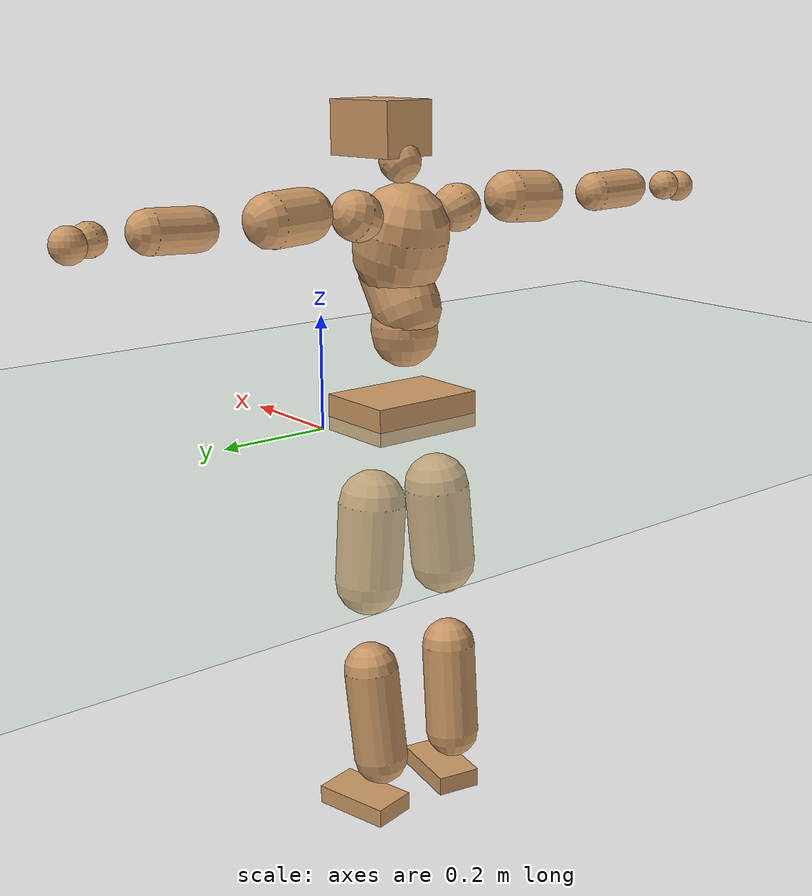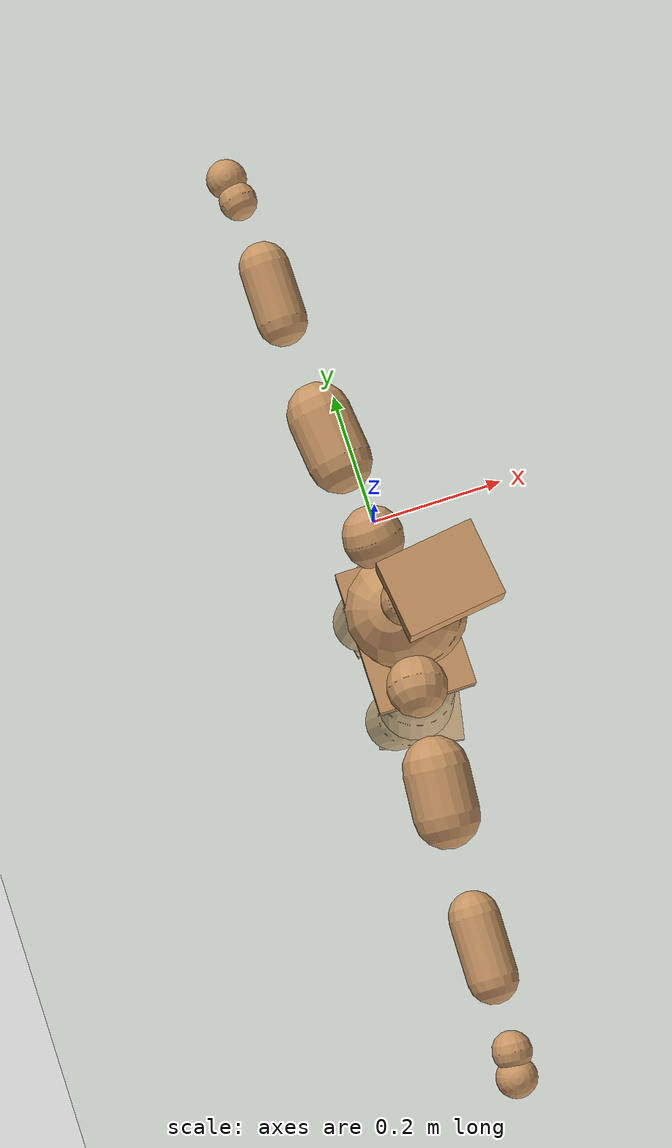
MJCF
<mujoco model="humanoid">
  <compiler coordinate="local" angle="radian"/>
  <default>
    <joint damping="0.0" armature="0.01" stiffness="0.0" limited="true"/>
    <geom conaffinity="1" condim="3" contype="7" margin="0.001" rgba="0.8 0.6 .4 1"/>
  </default>
  <asset>
    <texture type="skybox" builtin="gradient" rgb1=".4 .5 .6" rgb2="0 0 0" width="100" height="100"/>
    <texture builtin="flat" height="1278" mark="cross" markrgb="1 1 1" name="texgeom" random="0.01" rgb1="0.8 0.6 0.4" rgb2="0.8 0.6 0.4" type="cube" width="127"/>
    <texture builtin="checker" height="100" name="texplane" rgb1="0 0 0" rgb2="0.8 0.8 0.8" type="2d" width="100"/>
    <material name="MatPlane" reflectance="0.5" shininess="1" specular="1" texrepeat="60 60" texture="texplane"/>
    <material name="geom" texture="texgeom" texuniform="true"/>
  </asset>
  <worldbody>
    <light cutoff="100" diffuse="1 1 1" dir="-0 0 -1.3" directional="true" exponent="1" pos="0 0 1.3" specular=".1 .1 .1"/>
    <geom conaffinity="1" condim="3" name="floor" pos="0 0 0" rgba="0.8 0.9 0.8 1" size="100 100 .2" type="plane" material="MatPlane"/>
    <body name="Pelvis" pos="-0.0004 -0.1711 0.0178">
      <freejoint name="Pelvis"/>
      <geom type="box" contype="1" conaffinity="1" density="5359.375403" pos="-0.0058 -0.0000 -0.0116" size="0.0754 0.1093 0.0332" quat="1.0000 0.0000 0.0000 0.0002" name="Pelvis"/>
      <body name="L_Hip" pos="-0.0118 0.0695 -0.0799">
        <joint name="L_Hip_x" type="hinge" pos="0 0 0" axis="1 0 0" stiffness="1600" damping="160" armature="0.02" range="-180.0000 180.0000"/>
        <joint name="L_Hip_y" type="hinge" pos="0 0 0" axis="0 1 0" stiffness="1600" damping="160" armature="0.02" range="-180.0000 180.0000"/>
        <joint name="L_Hip_z" type="hinge" pos="0 0 0" axis="0 0 1" stiffness="1600" damping="160" armature="0.02" range="-180.0000 180.0000"/>
        <geom type="capsule" contype="1" conaffinity="1" density="2040.816327" size="0.0612" fromto="-0.0011 0.0072 -0.0909 -0.0030 0.0190 -0.2395" name="L_Hip"/>
        <body name="L_Knee" pos="-0.0041 0.0262 -0.3304">
          <joint name="L_Knee_x" type="hinge" pos="0 0 0" axis="1 0 0" stiffness="1600" damping="160" armature="0.02" range="-180.0000 180.0000"/>
          <joint name="L_Knee_y" type="hinge" pos="0 0 0" axis="0 1 0" stiffness="1600" damping="160" armature="0.02" range="-180.0000 180.0000"/>
          <joint name="L_Knee_z" type="hinge" pos="0 0 0" axis="0 0 1" stiffness="1600" damping="160" armature="0.02" range="-180.0000 180.0000"/>
          <geom type="capsule" contype="1" conaffinity="1" density="1234.567901" size="0.0509" fromto="-0.0098 -0.0022 -0.0803 -0.0310 -0.0071 -0.2549" name="L_Knee"/>
          <body name="L_Ankle" pos="-0.0408 -0.0093 -0.3352">
            <joint name="L_Ankle_x" type="hinge" pos="0 0 0" axis="1 0 0" stiffness="1600" damping="160" armature="0.02" range="-180.0000 180.0000"/>
            <joint name="L_Ankle_y" type="hinge" pos="0 0 0" axis="0 1 0" stiffness="1600" damping="160" armature="0.02" range="-180.0000 180.0000"/>
            <joint name="L_Ankle_z" type="hinge" pos="0 0 0" axis="0 0 1" stiffness="1600" damping="160" armature="0.02" range="-180.0000 180.0000"/>
            <geom type="box" contype="1" conaffinity="1" density="1000.000015" pos="0.0510 0.0112 -0.0235" size="0.0749 0.0426 0.0177" quat="0.9942 0.0000 0.0000 0.1075" name="L_Ankle"/>
            <body name="L_Toe" pos="0.1021 0.0223 -0.047">
              <joint name="L_Toe_x" type="hinge" pos="0 0 0" axis="1 0 0" stiffness="1000" damping="100" armature="0.02" range="-180.0000 180.0000"/>
              <joint name="L_Toe_y" type="hinge" pos="0 0 0" axis="0 1 0" stiffness="1000" damping="100" armature="0.02" range="-180.0000 180.0000"/>
              <joint name="L_Toe_z" type="hinge" pos="0 0 0" axis="0 0 1" stiffness="1000" damping="100" armature="0.02" range="-180.0000 180.0000"/>
              <geom type="box" contype="1" conaffinity="1" density="8097331.690763" pos="0.0000 0.0000 0.0231" size="0.0009 0.0021 0.0009" quat="0.9934 0.0000 0.0000 0.1146" name="L_Toe"/>
            </body>
          </body>
        </body>
      </body>
      <body name="R_Hip" pos="-0.0092 -0.0688 -0.0785">
        <joint name="R_Hip_x" type="hinge" pos="0 0 0" axis="1 0 0" stiffness="1600" damping="160" armature="0.02" range="-180.0000 180.0000"/>
        <joint name="R_Hip_y" type="hinge" pos="0 0 0" axis="0 1 0" stiffness="1600" damping="160" armature="0.02" range="-180.0000 180.0000"/>
        <joint name="R_Hip_z" type="hinge" pos="0 0 0" axis="0 0 1" stiffness="1600" damping="160" armature="0.02" range="-180.0000 180.0000"/>
        <geom type="capsule" contype="1" conaffinity="1" density="2040.816327" size="0.0607" fromto="-0.0018 -0.0080 -0.0904 -0.0050 -0.0218 -0.2454" name="R_Hip"/>
        <body name="R_Knee" pos="-0.0068 -0.0299 -0.3358">
          <joint name="R_Knee_x" type="hinge" pos="0 0 0" axis="1 0 0" stiffness="1600" damping="160" armature="0.02" range="-180.0000 180.0000"/>
          <joint name="R_Knee_y" type="hinge" pos="0 0 0" axis="0 1 0" stiffness="1600" damping="160" armature="0.02" range="-180.0000 180.0000"/>
          <joint name="R_Knee_z" type="hinge" pos="0 0 0" axis="0 0 1" stiffness="1600" damping="160" armature="0.02" range="-180.0000 180.0000"/>
          <geom type="capsule" contype="1" conaffinity="1" density="1234.567901" size="0.0511" fromto="-0.0094 0.0029 -0.0805 -0.0300 0.0091 -0.2556" name="R_Knee"/>
          <body name="R_Ankle" pos="-0.0394 0.0119 -0.3361">
            <joint name="R_Ankle_x" type="hinge" pos="0 0 0" axis="1 0 0" stiffness="1600" damping="160" armature="0.02" range="-180.0000 180.0000"/>
            <joint name="R_Ankle_y" type="hinge" pos="0 0 0" axis="0 1 0" stiffness="1600" damping="160" armature="0.02" range="-180.0000 180.0000"/>
            <joint name="R_Ankle_z" type="hinge" pos="0 0 0" axis="0 0 1" stiffness="1600" damping="160" armature="0.02" range="-180.0000 180.0000"/>
            <geom type="box" contype="1" conaffinity="1" density="999.999973" pos="0.0526 -0.0104 -0.0206" size="0.0747 0.042 0.0181" quat="0.9952 0.0000 0.0000 -0.0978" name="R_Ankle"/>
            <body name="R_Toe" pos="0.1051 -0.0209 -0.0411">
              <joint name="R_Toe_x" type="hinge" pos="0 0 0" axis="1 0 0" stiffness="1000" damping="100" armature="0.02" range="-180.0000 180.0000"/>
              <joint name="R_Toe_y" type="hinge" pos="0 0 0" axis="0 1 0" stiffness="1000" damping="100" armature="0.02" range="-180.0000 180.0000"/>
              <joint name="R_Toe_z" type="hinge" pos="0 0 0" axis="0 0 1" stiffness="1000" damping="100" armature="0.02" range="-180.0000 180.0000"/>
              <geom type="box" contype="1" conaffinity="1" density="8086687.204742" pos="0.0000 0.0000 0.0210" size="0.0008 0.0021 0.0009" quat="0.9962 0.0000 0.0000 -0.0871" name="R_Toe"/>
            </body>
          </body>
        </body>
      </body>
      <body name="Torso" pos="-0.0135 -0.0008 0.0887">
        <joint name="Torso_x" type="hinge" pos="0 0 0" axis="1 0 0" stiffness="2000" damping="200" armature="0.02" range="-180.0000 180.0000"/>
        <joint name="Torso_y" type="hinge" pos="0 0 0" axis="0 1 0" stiffness="2000" damping="200" armature="0.02" range="-180.0000 180.0000"/>
        <joint name="Torso_z" type="hinge" pos="0 0 0" axis="0 0 1" stiffness="2000" damping="200" armature="0.02" range="-180.0000 180.0000"/>
        <geom type="capsule" contype="1" conaffinity="1" density="2040.816327" size="0.0598" fromto="0.0008 0.0009 0.0598 0.0006 0.0006 0.0426" name="Torso"/>
        <body name="Spine" pos="0.0014 0.0015 0.1023">
          <joint name="Spine_x" type="hinge" pos="0 0 0" axis="1 0 0" stiffness="2000" damping="200" armature="0.02" range="-180.0000 180.0000"/>
          <joint name="Spine_y" type="hinge" pos="0 0 0" axis="0 1 0" stiffness="2000" damping="200" armature="0.02" range="-180.0000 180.0000"/>
          <joint name="Spine_z" type="hinge" pos="0 0 0" axis="0 0 1" stiffness="2000" damping="200" armature="0.02" range="-180.0000 180.0000"/>
          <geom type="capsule" contype="1" conaffinity="1" density="2040.816327" size="0.0618" fromto="0.0301 0.0026 0.0539 -0.0074 -0.0007 -0.0133" name="Spine"/>
          <body name="Chest" pos="0.0227 0.002 0.0406">
            <joint name="Chest_x" type="hinge" pos="0 0 0" axis="1 0 0" stiffness="2000" damping="200" armature="0.02" range="-180.0000 180.0000"/>
            <joint name="Chest_y" type="hinge" pos="0 0 0" axis="0 1 0" stiffness="2000" damping="200" armature="0.02" range="-180.0000 180.0000"/>
            <joint name="Chest_z" type="hinge" pos="0 0 0" axis="0 0 1" stiffness="2000" damping="200" armature="0.02" range="-180.0000 180.0000"/>
            <geom type="capsule" contype="1" conaffinity="1" density="2040.816327" size="0.0833" fromto="-0.0222 -0.0008 0.0802 -0.0120 -0.0004 0.0434" name="Chest"/>
            <body name="Neck" pos="-0.0399 -0.0014 0.1723">
              <joint name="Neck_x" type="hinge" pos="0 0 0" axis="1 0 0" stiffness="1000" damping="100" armature="0.02" range="-180.0000 180.0000"/>
              <joint name="Neck_y" type="hinge" pos="0 0 0" axis="0 1 0" stiffness="1000" damping="100" armature="0.02" range="-180.0000 180.0000"/>
              <joint name="Neck_z" type="hinge" pos="0 0 0" axis="0 0 1" stiffness="1000" damping="100" armature="0.02" range="-180.0000 180.0000"/>
              <geom type="capsule" contype="1" conaffinity="1" density="1000" size="0.0364" fromto="0.0235 0.0021 0.0277 0.0215 0.0019 0.0254" name="Neck"/>
              <body name="Head" pos="0.0451 0.004 0.0532">
                <joint name="Head_x" type="hinge" pos="0 0 0" axis="1 0 0" stiffness="1000" damping="100" armature="0.02" range="-180.0000 180.0000"/>
                <joint name="Head_y" type="hinge" pos="0 0 0" axis="0 1 0" stiffness="1000" damping="100" armature="0.02" range="-180.0000 180.0000"/>
                <joint name="Head_z" type="hinge" pos="0 0 0" axis="0 0 1" stiffness="1000" damping="100" armature="0.02" range="-180.0000 180.0000"/>
                <geom type="box" contype="1" conaffinity="1" density="2249.999693" pos="0.0235 0.0030 0.0276" size="0.0693 0.0544 0.0474" quat="0.9980 0.0000 0.0000 0.0633" name="Head"/>
              </body>
            </body>
            <body name="L_Thorax" pos="-0.0289 0.0669 0.0999">
              <joint name="L_Thorax_x" type="hinge" pos="0 0 0" axis="1 0 0" stiffness="1000" damping="100" armature="0.02" range="-180.0000 180.0000"/>
              <joint name="L_Thorax_y" type="hinge" pos="0 0 0" axis="0 1 0" stiffness="1000" damping="100" armature="0.02" range="-180.0000 180.0000"/>
              <joint name="L_Thorax_z" type="hinge" pos="0 0 0" axis="0 0 1" stiffness="1000" damping="100" armature="0.02" range="-180.0000 180.0000"/>
              <geom type="capsule" contype="1" conaffinity="1" density="1000" size="0.0434" fromto="-0.0038 0.0404 0.0154 -0.0035 0.0367 0.0140" name="L_Thorax"/>
              <body name="L_Shoulder" pos="-0.0073 0.0771 0.0293">
                <joint name="L_Shoulder_x" type="hinge" pos="0 0 0" axis="1 0 0" stiffness="1000" damping="100" armature="0.02" range="-720.0000 720.0000"/>
                <joint name="L_Shoulder_y" type="hinge" pos="0 0 0" axis="0 1 0" stiffness="1000" damping="100" armature="0.02" range="-720.0000 720.0000"/>
                <joint name="L_Shoulder_z" type="hinge" pos="0 0 0" axis="0 0 1" stiffness="1000" damping="100" armature="0.02" range="-720.0000 720.0000"/>
                <geom type="capsule" contype="1" conaffinity="1" density="1000" size="0.0455" fromto="-0.0079 0.0750 -0.0030 -0.0154 0.1469 -0.0058" name="L_Shoulder"/>
                <body name="L_Elbow" pos="-0.0233 0.2219 -0.0088">
                  <joint name="L_Elbow_x" type="hinge" pos="0 0 0" axis="1 0 0" stiffness="1000" damping="100" armature="0.02" range="-720.0000 720.0000"/>
                  <joint name="L_Elbow_y" type="hinge" pos="0 0 0" axis="0 1 0" stiffness="1000" damping="100" armature="0.02" range="-720.0000 720.0000"/>
                  <joint name="L_Elbow_z" type="hinge" pos="0 0 0" axis="0 0 1" stiffness="1000" damping="100" armature="0.02" range="-720.0000 720.0000"/>
                  <geom type="capsule" contype="1" conaffinity="1" density="1000" size="0.0356" fromto="-0.0004 0.0655 0.0025 -0.0009 0.1457 0.0055" name="L_Elbow"/>
                  <body name="L_Wrist" pos="-0.0013 0.2112 0.008">
                    <joint name="L_Wrist_x" type="hinge" pos="0 0 0" axis="1 0 0" stiffness="600" damping="60" armature="0.02" range="-180.0000 180.0000"/>
                    <joint name="L_Wrist_y" type="hinge" pos="0 0 0" axis="0 1 0" stiffness="600" damping="60" armature="0.02" range="-180.0000 180.0000"/>
                    <joint name="L_Wrist_z" type="hinge" pos="0 0 0" axis="0 0 1" stiffness="600" damping="60" armature="0.02" range="-180.0000 180.0000"/>
                    <geom type="capsule" contype="1" conaffinity="1" density="1000" size="0.0267" fromto="-0.0057 0.0341 -0.0042 -0.0060 0.0361 -0.0044" name="L_Wrist"/>
                    <body name="L_Hand" pos="-0.0117 0.0703 -0.0086">
                      <joint name="L_Hand_x" type="hinge" pos="0 0 0" axis="1 0 0" stiffness="600" damping="60" armature="0.02" range="-180.0000 180.0000"/>
                      <joint name="L_Hand_y" type="hinge" pos="0 0 0" axis="0 1 0" stiffness="600" damping="60" armature="0.02" range="-180.0000 180.0000"/>
                      <joint name="L_Hand_z" type="hinge" pos="0 0 0" axis="0 0 1" stiffness="600" damping="60" armature="0.02" range="-180.0000 180.0000"/>
                      <geom type="sphere" contype="1" conaffinity="1" density="1000" size="0.0284" pos="0.0000 0.0000 0.0000" name="L_Hand"/>
                    </body>
                  </body>
                </body>
              </body>
            </body>
            <body name="R_Thorax" pos="-0.0336 -0.0693 0.0986">
              <joint name="R_Thorax_x" type="hinge" pos="0 0 0" axis="1 0 0" stiffness="1000" damping="100" armature="0.02" range="-180.0000 180.0000"/>
              <joint name="R_Thorax_y" type="hinge" pos="0 0 0" axis="0 1 0" stiffness="1000" damping="100" armature="0.02" range="-180.0000 180.0000"/>
              <joint name="R_Thorax_z" type="hinge" pos="0 0 0" axis="0 0 1" stiffness="1000" damping="100" armature="0.02" range="-180.0000 180.0000"/>
              <geom type="capsule" contype="1" conaffinity="1" density="1000" size="0.0427" fromto="-0.0051 -0.0397 0.0152 -0.0053 -0.0416 0.0159" name="R_Thorax"/>
              <body name="R_Shoulder" pos="-0.0104 -0.0813 0.0311">
                <joint name="R_Shoulder_x" type="hinge" pos="0 0 0" axis="1 0 0" stiffness="1000" damping="100" armature="0.02" range="-720.0000 720.0000"/>
                <joint name="R_Shoulder_y" type="hinge" pos="0 0 0" axis="0 1 0" stiffness="1000" damping="100" armature="0.02" range="-720.0000 720.0000"/>
                <joint name="R_Shoulder_z" type="hinge" pos="0 0 0" axis="0 0 1" stiffness="1000" damping="100" armature="0.02" range="-720.0000 720.0000"/>
                <geom type="capsule" contype="1" conaffinity="1" density="1000" size="0.0467" fromto="-0.0062 -0.0764 -0.0035 -0.0115 -0.1416 -0.0066" name="R_Shoulder"/>
                <body name="R_Elbow" pos="-0.0176 -0.218 -0.0101">
                  <joint name="R_Elbow_x" type="hinge" pos="0 0 0" axis="1 0 0" stiffness="1000" damping="100" armature="0.02" range="-720.0000 720.0000"/>
                  <joint name="R_Elbow_y" type="hinge" pos="0 0 0" axis="0 1 0" stiffness="1000" damping="100" armature="0.02" range="-720.0000 720.0000"/>
                  <joint name="R_Elbow_z" type="hinge" pos="0 0 0" axis="0 0 1" stiffness="1000" damping="100" armature="0.02" range="-720.0000 720.0000"/>
                  <geom type="capsule" contype="1" conaffinity="1" density="1000" size="0.0357" fromto="-0.0013 -0.0657 0.0018 -0.0030 -0.1536 0.0042" name="R_Elbow"/>
                  <body name="R_Wrist" pos="-0.0042 -0.2193 0.006">
                    <joint name="R_Wrist_x" type="hinge" pos="0 0 0" axis="1 0 0" stiffness="600" damping="60" armature="0.02" range="-180.0000 180.0000"/>
                    <joint name="R_Wrist_y" type="hinge" pos="0 0 0" axis="0 1 0" stiffness="600" damping="60" armature="0.02" range="-180.0000 180.0000"/>
                    <joint name="R_Wrist_z" type="hinge" pos="0 0 0" axis="0 0 1" stiffness="600" damping="60" armature="0.02" range="-180.0000 180.0000"/>
                    <geom type="capsule" contype="1" conaffinity="1" density="1000" size="0.0278" fromto="-0.0046 -0.0349 -0.0033 -0.0048 -0.0369 -0.0034" name="R_Wrist"/>
                    <body name="R_Hand" pos="-0.0094 -0.0717 -0.0067">
                      <joint name="R_Hand_x" type="hinge" pos="0 0 0" axis="1 0 0" stiffness="600" damping="60" armature="0.02" range="-180.0000 180.0000"/>
                      <joint name="R_Hand_y" type="hinge" pos="0 0 0" axis="0 1 0" stiffness="600" damping="60" armature="0.02" range="-180.0000 180.0000"/>
                      <joint name="R_Hand_z" type="hinge" pos="0 0 0" axis="0 0 1" stiffness="600" damping="60" armature="0.02" range="-180.0000 180.0000"/>
                      <geom type="sphere" contype="1" conaffinity="1" density="1000" size="0.0290" pos="0.0000 0.0000 0.0000" name="R_Hand"/>
                    </body>
                  </body>
                </body>
              </body>
            </body>
          </body>
        </body>
      </body>
    </body>
  </worldbody>
  <actuator>
    <motor name="L_Hip_x" joint="L_Hip_x" gear="500"/>
    <motor name="L_Hip_y" joint="L_Hip_y" gear="500"/>
    <motor name="L_Hip_z" joint="L_Hip_z" gear="500"/>
    <motor name="L_Knee_x" joint="L_Knee_x" gear="500"/>
    <motor name="L_Knee_y" joint="L_Knee_y" gear="500"/>
    <motor name="L_Knee_z" joint="L_Knee_z" gear="500"/>
    <motor name="L_Ankle_x" joint="L_Ankle_x" gear="500"/>
    <motor name="L_Ankle_y" joint="L_Ankle_y" gear="500"/>
    <motor name="L_Ankle_z" joint="L_Ankle_z" gear="500"/>
    <motor name="L_Toe_x" joint="L_Toe_x" gear="500"/>
    <motor name="L_Toe_y" joint="L_Toe_y" gear="500"/>
    <motor name="L_Toe_z" joint="L_Toe_z" gear="500"/>
    <motor name="R_Hip_x" joint="R_Hip_x" gear="500"/>
    <motor name="R_Hip_y" joint="R_Hip_y" gear="500"/>
    <motor name="R_Hip_z" joint="R_Hip_z" gear="500"/>
    <motor name="R_Knee_x" joint="R_Knee_x" gear="500"/>
    <motor name="R_Knee_y" joint="R_Knee_y" gear="500"/>
    <motor name="R_Knee_z" joint="R_Knee_z" gear="500"/>
    <motor name="R_Ankle_x" joint="R_Ankle_x" gear="500"/>
    <motor name="R_Ankle_y" joint="R_Ankle_y" gear="500"/>
    <motor name="R_Ankle_z" joint="R_Ankle_z" gear="500"/>
    <motor name="R_Toe_x" joint="R_Toe_x" gear="500"/>
    <motor name="R_Toe_y" joint="R_Toe_y" gear="500"/>
    <motor name="R_Toe_z" joint="R_Toe_z" gear="500"/>
    <motor name="Torso_x" joint="Torso_x" gear="500"/>
    <motor name="Torso_y" joint="Torso_y" gear="500"/>
    <motor name="Torso_z" joint="Torso_z" gear="500"/>
    <motor name="Spine_x" joint="Spine_x" gear="500"/>
    <motor name="Spine_y" joint="Spine_y" gear="500"/>
    <motor name="Spine_z" joint="Spine_z" gear="500"/>
    <motor name="Chest_x" joint="Chest_x" gear="500"/>
    <motor name="Chest_y" joint="Chest_y" gear="500"/>
    <motor name="Chest_z" joint="Chest_z" gear="500"/>
    <motor name="Neck_x" joint="Neck_x" gear="500"/>
    <motor name="Neck_y" joint="Neck_y" gear="500"/>
    <motor name="Neck_z" joint="Neck_z" gear="500"/>
    <motor name="Head_x" joint="Head_x" gear="500"/>
    <motor name="Head_y" joint="Head_y" gear="500"/>
    <motor name="Head_z" joint="Head_z" gear="500"/>
    <motor name="L_Thorax_x" joint="L_Thorax_x" gear="500"/>
    <motor name="L_Thorax_y" joint="L_Thorax_y" gear="500"/>
    <motor name="L_Thorax_z" joint="L_Thorax_z" gear="500"/>
    <motor name="L_Shoulder_x" joint="L_Shoulder_x" gear="500"/>
    <motor name="L_Shoulder_y" joint="L_Shoulder_y" gear="500"/>
    <motor name="L_Shoulder_z" joint="L_Shoulder_z" gear="500"/>
    <motor name="L_Elbow_x" joint="L_Elbow_x" gear="500"/>
    <motor name="L_Elbow_y" joint="L_Elbow_y" gear="500"/>
    <motor name="L_Elbow_z" joint="L_Elbow_z" gear="500"/>
    <motor name="L_Wrist_x" joint="L_Wrist_x" gear="500"/>
    <motor name="L_Wrist_y" joint="L_Wrist_y" gear="500"/>
    <motor name="L_Wrist_z" joint="L_Wrist_z" gear="500"/>
    <motor name="L_Hand_x" joint="L_Hand_x" gear="500"/>
    <motor name="L_Hand_y" joint="L_Hand_y" gear="500"/>
    <motor name="L_Hand_z" joint="L_Hand_z" gear="500"/>
    <motor name="R_Thorax_x" joint="R_Thorax_x" gear="500"/>
    <motor name="R_Thorax_y" joint="R_Thorax_y" gear="500"/>
    <motor name="R_Thorax_z" joint="R_Thorax_z" gear="500"/>
    <motor name="R_Shoulder_x" joint="R_Shoulder_x" gear="500"/>
    <motor name="R_Shoulder_y" joint="R_Shoulder_y" gear="500"/>
    <motor name="R_Shoulder_z" joint="R_Shoulder_z" gear="500"/>
    <motor name="R_Elbow_x" joint="R_Elbow_x" gear="500"/>
    <motor name="R_Elbow_y" joint="R_Elbow_y" gear="500"/>
    <motor name="R_Elbow_z" joint="R_Elbow_z" gear="500"/>
    <motor name="R_Wrist_x" joint="R_Wrist_x" gear="500"/>
    <motor name="R_Wrist_y" joint="R_Wrist_y" gear="500"/>
    <motor name="R_Wrist_z" joint="R_Wrist_z" gear="500"/>
    <motor name="R_Hand_x" joint="R_Hand_x" gear="500"/>
    <motor name="R_Hand_y" joint="R_Hand_y" gear="500"/>
    <motor name="R_Hand_z" joint="R_Hand_z" gear="500"/>
  </actuator>
  <contact>
    <exclude body1="Torso" body2="Chest"/>
    <exclude body1="Head" body2="Chest"/>
    <exclude body1="R_Knee" body2="R_Toe"/>
    <exclude body1="R_Knee" body2="L_Ankle"/>
    <exclude body1="R_Knee" body2="L_Toe"/>
    <exclude body1="L_Knee" body2="L_Toe"/>
    <exclude body1="L_Knee" body2="R_Ankle"/>
    <exclude body1="L_Knee" body2="R_Toe"/>
    <exclude body1="L_Shoulder" body2="Chest"/>
    <exclude body1="R_Shoulder" body2="Chest"/>
  </contact>
  <sensor/>
  <size njmax="700" nconmax="700"/>
</mujoco>
